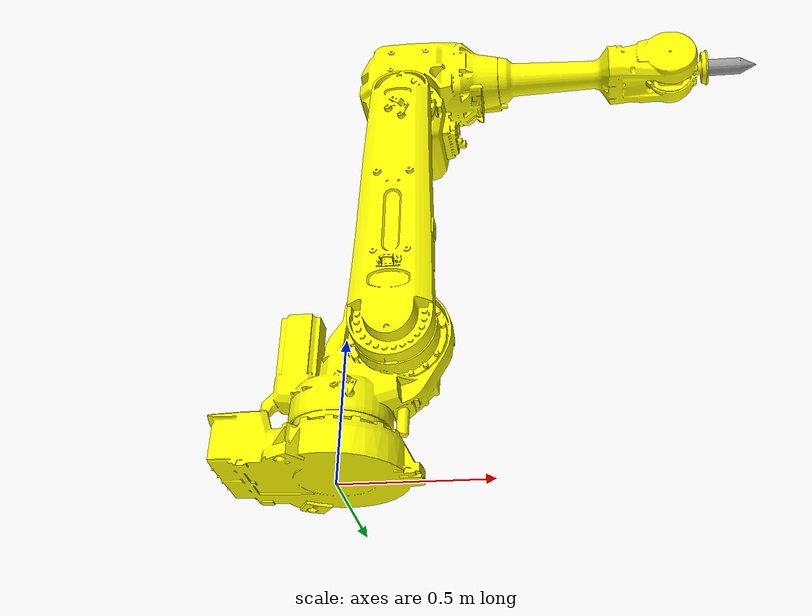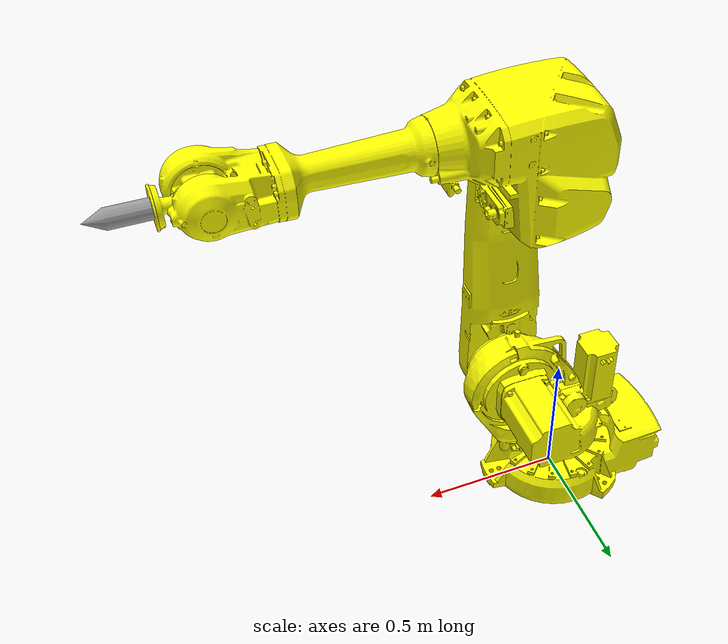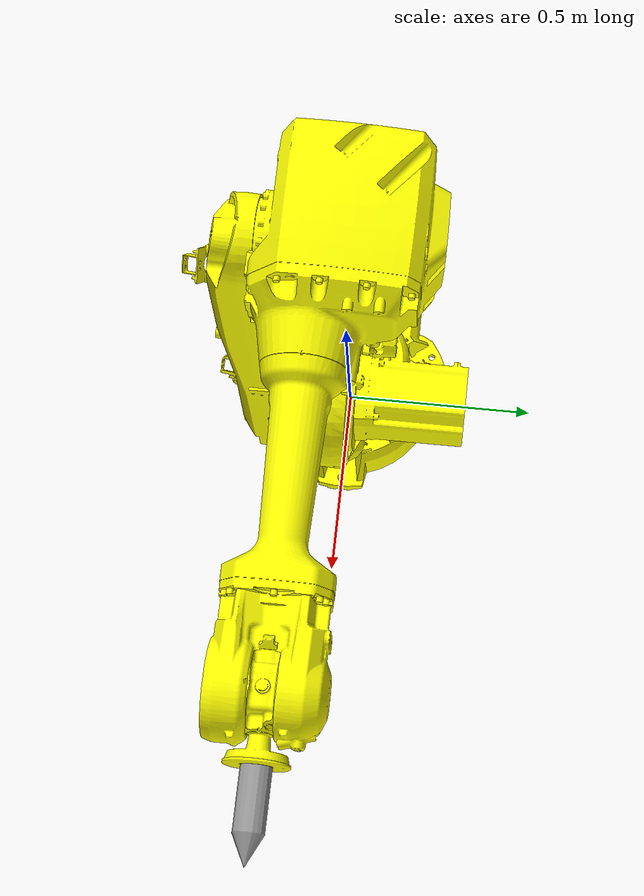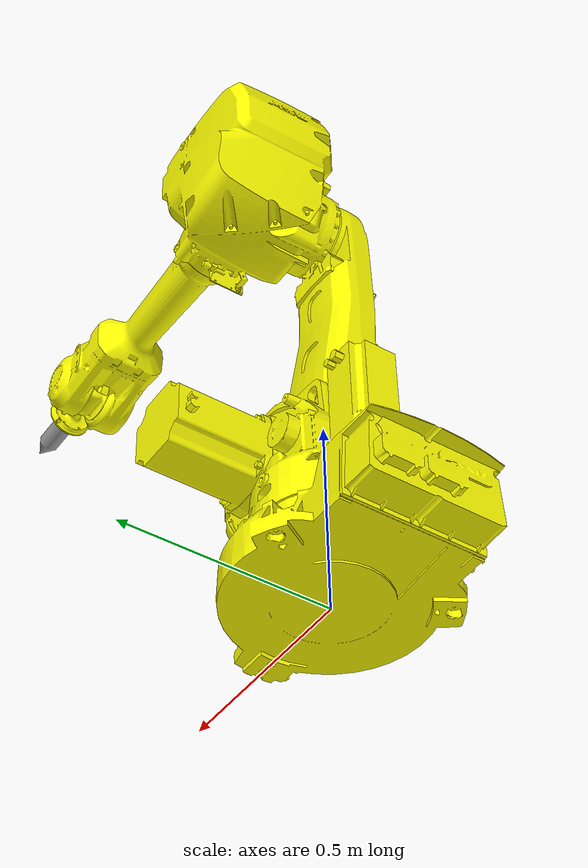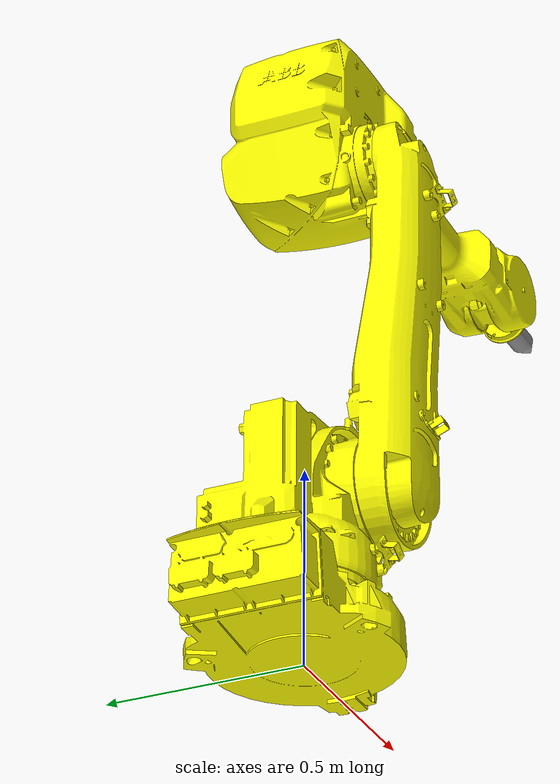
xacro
<?xml version="1.0" ?>
<robot name="abb_irb4600_w_eef" xmlns:xacro="http://wiki.ros.org/xacro">
    <!-- include macros for robot and the eef model -->
    <xacro:include filename="$(find abb_irb4600_support)/urdf/irb4600_60_205_w_eef_macro.xacro"/>
    <xacro:include filename="$(find eef_simple)/urdf/eef_simple_macro.xacro"/>

    <!-- create the robot + eef combo itself as a macro -->
    <xacro:macro name="abb_irb4600_w_eef" params="prefix">
        <!-- instantiate robot and eef model -->
        <xacro:abb_irb4600_60_205 prefix="${prefix}" using_eef="true"/>
        <xacro:eef_simple_macro   prefix="${prefix}"/>

        <!-- Attach eef to robot model -->
        <joint name="${prefix}flange-${prefix}tool_base" type="fixed">
            <origin xyz="0 0 0" rpy="0 0 0" />
            <parent link="${prefix}flange" />
            <child link="${prefix}tool_base" />
        </joint>

        <!-- ROS-Industrial Attach 'tool0' frame to eef: all-zeros tool frame -->
        <joint name="${prefix}tool_frame-${prefix}tool0" type="fixed">
            <origin xyz="0 0 0" rpy="0 ${radians(90)} 0" />
            <parent link="${prefix}tool_frame" />
            <child link="${prefix}tool0" />
        </joint>
    </xacro:macro>

    <xacro:abb_irb4600_w_eef prefix=""/>
</robot>

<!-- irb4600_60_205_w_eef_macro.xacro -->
<robot xmlns:xacro="http://ros.org/wiki/xacro">
  <xacro:macro name="abb_irb4600_60_205" params="prefix using_eef:='false'">
    <!-- link list -->
    <link name="${prefix}base_link">
      <collision name="collision">
        <geometry>
          <mesh filename="package://abb_irb4600_support/meshes/irb4600/collision/base_link.stl"/>
        </geometry>
      </collision>
      <visual name="visual">
        <geometry>
          <mesh filename="package://abb_irb4600_support/meshes/irb4600/visual/base_link.dae"/>
        </geometry>
        <material name="yellow">
          <color rgba="1 1 0 1"/>
        </material>
      </visual>
    </link>
    <link name="${prefix}link_1">
      <collision name="collision">
        <geometry>
          <mesh filename="package://abb_irb4600_support/meshes/irb4600/collision/link_1.stl"/>
        </geometry>
      </collision>
      <visual name="visual">
        <geometry>
          <mesh filename="package://abb_irb4600_support/meshes/irb4600/visual/link_1.dae"/>
        </geometry>
        <material name="yellow"/>
      </visual>
    </link>
    <link name="${prefix}link_2">
      <collision name="collision">
        <geometry>
          <mesh filename="package://abb_irb4600_support/meshes/irb4600_60_205/collision/link_2.stl"/>
        </geometry>
      </collision>
      <visual name="visual">
        <geometry>
          <mesh filename="package://abb_irb4600_support/meshes/irb4600_60_205/visual/link_2.dae"/>
        </geometry>
        <material name="yellow"/>
      </visual>
    </link>
    <link name="${prefix}link_3">
      <collision name="collision">
        <geometry>
          <mesh filename="package://abb_irb4600_support/meshes/irb4600_60_205/collision/link_3.stl"/>
        </geometry>
      </collision>
      <visual name="visual">
        <geometry>
          <mesh filename="package://abb_irb4600_support/meshes/irb4600_60_205/visual/link_3.dae"/>
        </geometry>
        <material name="yellow"/>
      </visual>
    </link>
    <link name="${prefix}link_4">
      <collision name="collision">
        <geometry>
          <mesh filename="package://abb_irb4600_support/meshes/irb4600_60_205/collision/link_4.stl"/>
        </geometry>
      </collision>
      <visual name="visual">
        <geometry>
          <mesh filename="package://abb_irb4600_support/meshes/irb4600_60_205/visual/link_4.dae"/>
        </geometry>
        <material name="yellow"/>
      </visual>
    </link>
    <link name="${prefix}link_5">
      <collision name="collision">
        <geometry>
          <mesh filename="package://abb_irb4600_support/meshes/irb4600_60_205/collision/link_5.stl"/>
        </geometry>
      </collision>
      <visual name="visual">
        <geometry>
          <mesh filename="package://abb_irb4600_support/meshes/irb4600_60_205/visual/link_5.dae"/>
        </geometry>
        <material name="yellow"/>
      </visual>
    </link>
    <link name="${prefix}link_6">
      <collision name="collision">
        <geometry>
          <mesh filename="package://abb_irb4600_support/meshes/irb4600_60_205/collision/link_6.stl"/>
        </geometry>
      </collision>
      <visual name="visual">
        <geometry>
          <mesh filename="package://abb_irb4600_support/meshes/irb4600_60_205/visual/link_6.dae"/>
        </geometry>
        <material name="yellow"/>
      </visual>
    </link>
    <!-- end of link list -->

    <!-- joint list -->
    <joint type="revolute" name="${prefix}joint_1">
      <origin xyz="0 0 0.495" rpy="0 0 0"/>
      <axis xyz="0 0 1"/>
      <parent link="${prefix}base_link"/>
      <child link="${prefix}link_1"/>
      <limit effort="0" lower="-3.141" upper="3.141" velocity="3.054"/>
    </joint>
    <joint type="revolute" name="${prefix}joint_2">
      <origin xyz="0.175 0 0" rpy="0 0 0"/>
      <axis xyz="0 1 0"/>
      <parent link="${prefix}link_1"/>
      <child link="${prefix}link_2"/>
      <limit effort="0" lower="-1.570" upper="2.617" velocity="3.054"/>
    </joint>
    <joint type="revolute" name="${prefix}joint_3">
      <origin xyz="0 0 0.9" rpy="0 0 0"/>
      <axis xyz="0 1 0"/>
      <parent link="${prefix}link_2"/>
      <child link="${prefix}link_3"/>
      <limit effort="0" lower="-3.141" upper="1.308" velocity="3.054"/>
    </joint>
    <joint type="revolute" name="${prefix}joint_4">
      <origin xyz="0 0 0.175" rpy="0 0 0"/>
      <axis xyz="1 0 0"/>
      <parent link="${prefix}link_3"/>
      <child link="${prefix}link_4"/>
      <limit effort="0" lower="-6.981" upper="6.981" velocity="4.363"/>
    </joint>
    <joint type="revolute" name="${prefix}joint_5">
      <origin xyz="0.960 0 0 " rpy="0 0 0"/>
      <axis xyz="0 1 0"/>
      <parent link="${prefix}link_4"/>
      <child link="${prefix}link_5"/>
      <limit effort="0" lower="-2.181" upper="2.094" velocity="4.363"/>
    </joint>
    <joint type="revolute" name="${prefix}joint_6">
      <origin xyz="0.135 0 0 " rpy="0 0 0"/>
      <axis xyz="1 0 0"/>
      <parent link="${prefix}link_5"/>
      <child link="${prefix}link_6"/>
      <limit effort="0" lower="-6.981" upper="6.981" velocity="6.283"/>
    </joint>
    <!-- end of joint list -->

    <!-- ROS-Industrial 'base' frame: base_link to ABB World Coordinates transform -->
    <link name="${prefix}base" />
    <joint name="${prefix}base_link-base" type="fixed">
      <origin xyz="0 0 0" rpy="0 0 0"/>
      <parent link="${prefix}base_link"/>
      <child link="${prefix}base"/>
    </joint>

    <!-- ROS-Industrial 'flange' frame: attachment point for EEF models -->
    <link name="${prefix}flange"/>
    <joint type="fixed" name="${prefix}joint_6-flange">
      <origin xyz="0 0 0" rpy="0 0 0"/>
      <parent link="${prefix}link_6"/>
      <child link="${prefix}flange"/>
    </joint>

    <!-- ROS-Industrial 'tool0' frame: all-zeros tool frame -->
    <link name="${prefix}tool0" />

    <!-- If we are using eef do not join tool0 with flange but leave it for the developer -->
    <xacro:if value="${using_eef == 'false'}">
        <joint name="${prefix}link_6-tool0" type="fixed">
          <origin xyz="0 0 0" rpy="0 ${radians(90)} 0" />
          <parent link="${prefix}flange" />
          <child link="${prefix}tool0" />
        </joint>
    </xacro:if>
  </xacro:macro>
</robot>

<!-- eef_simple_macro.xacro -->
<robot xmlns:xacro="http://ros.org/wiki/xacro">
    <xacro:macro name="eef_simple_macro" params="prefix">
        <!-- link list -->
            <link name="${prefix}tool_base">
                <visual>
                    <origin xyz="0 0 0" rpy="0 0 0"/>
                    <geometry>
                        <mesh filename="package://eef_simple/meshes/visual/simple_effector.stl"/>
                    </geometry>
                    <material name="grey">
                        <color rgba="0.6 0.6 0.6 1.0"/>
                    </material>
                </visual>
                <collision>
                    <origin xyz="0 0 0" rpy="0 0 0"/>
                    <geometry>
                        <mesh filename="package://eef_simple/meshes/collision/simple_effector.stl"/>
                    </geometry>
                </collision>
            </link>

            <link name="${prefix}tool_frame"/>
        <!-- end of link list -->

        <!-- joint list -->
            <joint name="${prefix}tool_base-${prefix}tool_frame" type="fixed">
                <origin xyz="0.18 0 0" rpy="0 0 0"/>
                <parent link="${prefix}tool_base"/>
                <child link="${prefix}tool_frame"/>
            </joint>
        <!-- end of joint list -->
    </xacro:macro>
</robot>
